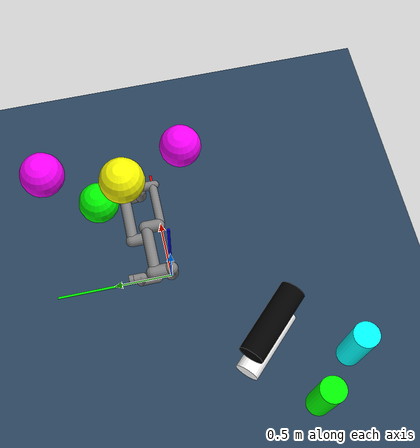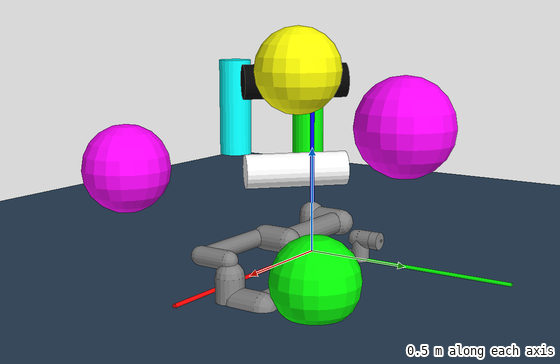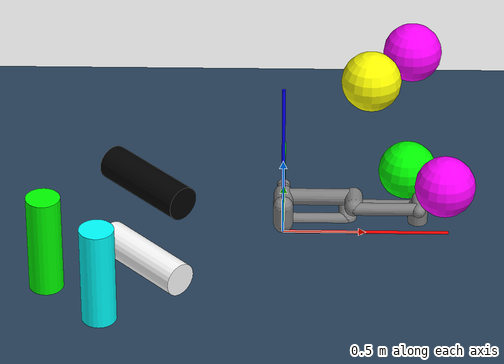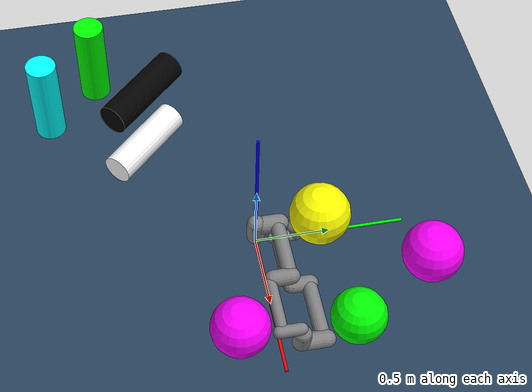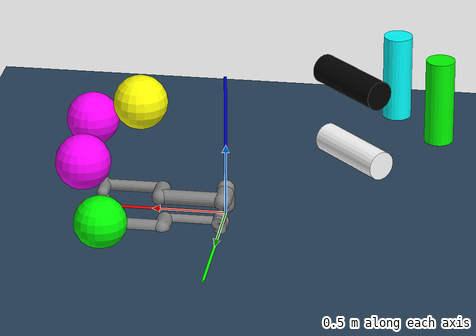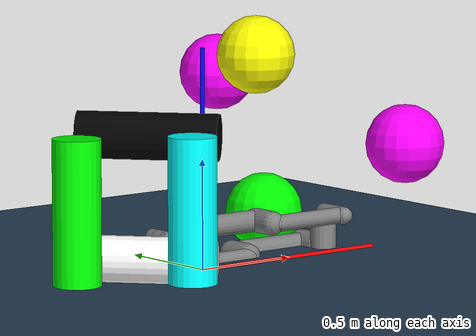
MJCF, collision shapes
<mujoco model="ur5e scene">

  <statistic center="0.3 0 0.4" extent="0.8"/>

  <visual>
    <headlight diffuse="0.6 0.6 0.6" ambient="0.1 0.1 0.1" specular="0 0 0"/>
    <rgba haze="0.15 0.25 0.35 1"/>
    <quality shadowsize="0"/>
  </visual>

  <asset>
    <texture type="skybox" builtin="gradient" rgb1="0.3 0.5 0.7" rgb2="0 0 0" width="512" height="3072"/>
    <texture type="2d" name="groundplane" builtin="checker" mark="edge" rgb1="0.2 0.3 0.4" rgb2="0.1 0.2 0.3"
      markrgb="0.8 0.8 0.8" width="300" height="300"/>
    <material name="groundplane" texture="groundplane" texuniform="true" texrepeat="5 5" reflectance="0"/>
  </asset>

  <worldbody>
    <!--	================= Coordinate system ================= /-->
		<light directional="false" cutoff="135" exponent="10" diffuse=".7 .7 .7" pos="0.4 -0.2 5.5" dir="-0.4 0.2 -5.5" specular=".3 .3 .3"/>
		<geom group="4" type="cylinder" contype="0" conaffinity="0" fromto="0 0 0 1 0 0" size="0.01" rgba="1 0 0 1"/>
		<geom group="4" type="cylinder" contype="0" conaffinity="0" fromto="0 0 0 0 1 0" size="0.01" rgba="0 1 0 1"/>
		<geom group="4" type="cylinder" contype="0" conaffinity="0" fromto="0 0 0 0 0 1" size="0.01" rgba="0 0 1 1"/>

    <light pos="0 0 1.5" dir="0 0 -1" directional="true"/>
    <geom name="floor" size="0 0 0.05" type="plane" material="groundplane"/>

  <body name="sphere1" pos="0.76340999 0.50321585 0.12606963" quat="1 0 0 0" >
      <geom group="1" name="sphere0" type="sphere" mass="0.4" size="0.18" rgba="0 1 0 0.5"/>
      <inertial pos="0 0 0" mass="0.2" diaginertia="0.001 0.001 0.001" />
  </body>
  <body name="sphere2" pos="0.5202747  0.26330838 0.9058423" quat="1 0 0 0" >
      <geom group="1" name="sphere1" type="sphere" mass="0.4" size="0.18" rgba="1 1 0 0.5"/>
      <inertial pos="0 0 0" mass="0.2" diaginertia="0.001 0.001 0.001" />
  </body>
  <body name="sphere3" pos="0.95268875 -0.28050018  0.51556448" quat="1 0 0 0" >
      <geom group="1" name="sphere2" type="sphere" mass="0.4" size="0.18" rgba="1 0 1 0.5"/>
      <inertial pos="0 0 0" mass="0.2" diaginertia="0.001 0.001 0.001" />
  </body>

  <body name="sphere4" pos="0.78704419 0.88009703 0.74686774" quat="1 0 0 0" >
      <geom group="1" name="sphere3" type="sphere" mass="0.4" size="0.18" rgba="1 0 1 0.5"/>
      <inertial pos="0 0 0" mass="0.2" diaginertia="0.001 0.001 0.001" />
  </body>
  <body name="cyl1" pos="-0.79662621 -0.62081242  0.22099285" quat="0.15848908 -0.36962848  0.60681832 -0.68558554" >
      <geom group="1" name="cylinder1" type="cylinder" mass="0.4" size="0.1 0.3" rgba="1 1 1 0.5"/>
      <inertial pos="0 0 0" mass="0.2" diaginertia="0.001 0.001 0.001" />
  </body>

  <body name="cyl2" pos="-0.77427365 -0.61406534  0.74329958" quat="0.15848908 -0.36962848  0.60681832 -0.68558554" >
      <geom group="1" name="cylinder2" type="cylinder" mass="0.4" size="0.1 0.3" rgba="0 0 0 0.5"/>
      <inertial pos="0 0 0" mass="0.2" diaginertia="0.001 0.001 0.001" />
  </body>
  <body name="cyl3" pos="-1.35370755 -0.89736099  0.51603806" quat="1 0 0 0" >
      <geom group="1" name="cylinder3" type="cylinder" mass="0.4" size="0.1 0.3" rgba="0 1 0 0.5"/>
      <inertial pos="0 0 0" mass="0.2" diaginertia="0.001 0.001 0.001" />
  </body>

  <body name="cyl4" pos="-1.02849892 -1.23807553  0.53468696" quat="1 0 0 0" >
      <geom group="1" name="cylinder4" type="cylinder" mass="0.4" size="0.1 0.3" rgba="0 1 1 0.5"/>
      <inertial pos="0 0 0" mass="0.2" diaginertia="0.001 0.001 0.001" />
  </body>

  </worldbody>

  <include file="ur5e.xml"/>
</mujoco>

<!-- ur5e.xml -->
<mujoco model="ur5e">
  <compiler angle="radian" meshdir="assets" autolimits="true"/>
  <option integrator="Euler" timestep="0.01" iterations="10" tolerance="1e-10" impratio="20"/>

  <default>
    <default class="ur5e">
      <material specular="0.5" shininess="0.25"/>
      <joint axis="0 1 0" range="-6.28319 6.28319" damping='200' armature="0.0004"/>
      <default class="GRIPPER">
        <joint damping='5'/>
      </default>

      <default class="visual">
        <geom type="mesh" contype="0" conaffinity="0" group="2"/>
      </default>
      <default class="collision">
        <geom type="capsule" group="3"/>
        <default class="eef_collision">
          <geom type="cylinder"/>
        </default>
      </default>
      <site size="0.001" rgba="0.5 0.5 0.5 0.3" group="4"/>
    </default>
  </default>

  <asset>
    <material class="ur5e" name="black" rgba="0.033 0.033 0.033 1"/>
    <material class="ur5e" name="jointgray" rgba="0.278 0.278 0.278 1"/>
    <material class="ur5e" name="linkgray" rgba="0.82 0.82 0.82 1"/>
    <material class="ur5e" name="urblue" rgba="0.49 0.678 0.8 1"/>

    <mesh file="base_0.obj"/>
    <mesh file="base_1.obj"/>
    <mesh file="shoulder_0.obj"/>
    <mesh file="shoulder_1.obj"/>
    <mesh file="shoulder_2.obj"/>
    <mesh file="upperarm_0.obj"/>
    <mesh file="upperarm_1.obj"/>
    <mesh file="upperarm_2.obj"/>
    <mesh file="upperarm_3.obj"/>
    <mesh file="forearm_0.obj"/>
    <mesh file="forearm_1.obj"/>
    <mesh file="forearm_2.obj"/>
    <mesh file="forearm_3.obj"/>
    <mesh file="wrist1_0.obj"/>
    <mesh file="wrist1_1.obj"/>
    <mesh file="wrist1_2.obj"/>
    <mesh file="wrist2_0.obj"/>
    <mesh file="wrist2_1.obj"/>
    <mesh file="wrist2_2.obj"/>
    <mesh file="wrist3.obj"/>
  </asset>

  <worldbody>
    <light name="spotlight" mode="targetbodycom" target="wrist_1_link" pos="0 -1 2"/>
    <!--body name="base" pos="0 0 0.74" quat=" 1 0 0 0" childclass="ur5e" quat=" 0 0 0 1"-->
    <body name="base" pos="0 0 0"  childclass="ur5e">
      <inertial mass="4.0" pos="0 0 0" diaginertia="0.00443333156 0.00443333156 0.0072"/>
      <geom group="2" name="ROBOT: base_0" mesh="base_0" material="black" class="visual"/>
      <geom group="2" name="ROBOT: base_1" mesh="base_1" material="jointgray" class="visual"/>
      <body name="shoulder_link" pos="0 0 0.163">
        <inertial mass="3.7" pos="0 0 0" diaginertia="0.0102675 0.0102675 0.00666"/><!--base joint-->
        <joint name="joint1" class="ur5e" axis="0 0 1" limited="true" range="-3.14159 3.14159"/>
        <geom group="2" name="ROBOT: shoulder_0" mesh="shoulder_0" material="urblue" class="visual"/>
        <geom group="2" name="ROBOT: shoulder_1" mesh="shoulder_1" material="black" class="visual"/>
        <geom group="2" name="ROBOT: shoulder_2" mesh="shoulder_2" material="jointgray" class="visual"/>
        <geom class="collision" size="0.06 0.06" pos="0 0 -0.04"/>
        <body name="upper_arm_link" pos="0 0.138 0" quat="1 0 1 0"> <!--90 deg about y-->
          <inertial mass="8.393" pos="0 0 0.2125" diaginertia="0.133886 0.133886 0.0151074"/>
          <joint name="joint2" class="ur5e" limited="true" range="-3.14159 3.14159"/>
          <geom group="2" name="ROBOT: upperarm_0" mesh="upperarm_0" material="linkgray" class="visual"/>
          <geom group="2" name="ROBOT: upperarm_1" mesh="upperarm_1" material="black" class="visual"/>
          <geom group="2" name="ROBOT: upperarm_2" mesh="upperarm_2" material="jointgray" class="visual"/>
          <geom group="2" name="ROBOT: upperarm_3" mesh="upperarm_3" material="urblue" class="visual"/>
          <geom class="collision" pos="0 -0.04 0" quat="1 1 0 0" size="0.06 0.06"/>
          <geom class="collision" size="0.05 0.2" pos="0 0 0.2"/>
          <body name="forearm_link" pos="0 -0.131 0.425">
            <inertial mass="2.275" pos="0 0 0.196" diaginertia="0.0311796 0.0311796 0.004095"/>
            <joint name="joint3" class="ur5e" limited="true" range="-3.14159 3.14159" />
            <geom group="2" name="ROBOT: forearm_0" mesh="forearm_0" material="urblue" class="visual"/>
            <geom group="2" name="ROBOT: forearm_1" mesh="forearm_1" material="linkgray" class="visual"/>
            <geom group="2" name="ROBOT: forearm_2" mesh="forearm_2" material="black" class="visual"/>
            <geom group="2" name="ROBOT: forearm_3" mesh="forearm_3" material="jointgray" class="visual"/>
            <geom class="collision" pos="0 0.08 0" quat="1 1 0 0" size="0.055 0.06"/>
            <geom class="collision" size="0.038 0.19" pos="0 0 0.2"/>
            <body name="wrist_1_link" pos="0 0 0.392" quat="1 0 1 0"> <!--90 deg about y-->
              <inertial mass="1.219" pos="0 0.127 0" diaginertia="0.0025599 0.0025599 0.0021942"/>
              <joint name="joint4" class="ur5e" limited="true" range="-3.14159 3.14159" />
              <geom group="2" name="ROBOT: wrist1_0" mesh="wrist1_0" material="black" class="visual"/>
              <geom group="2" name="ROBOT: wrist1_1" mesh="wrist1_1" material="urblue" class="visual"/>
              <geom group="2" name="ROBOT: wrist1_2" mesh="wrist1_2" material="jointgray" class="visual"/>
              <geom class="collision" pos="0 0.05 0" quat="1 1 0 0" size="0.04 0.07"/>
              <!--extra frame to align wrist_1_link body frame with link 4 dh parameter frame-->
              <body name="ee_link1" pos="0 0.127 0" > <!--from center of link 2 to center of link3. 0.133(dh)-0.0265 (1/2 link thickness)-->
                  <inertial pos="0 -0.0018 0.01634" mass="1.37" diaginertia="1.66667e-08 1.66667e-08 1.66667e-08" />
                  <geom group="2" name="ROBOT: ee_1" size="0.005 0.005 0.005" pos="-0.01 0 0" type="box" />
                    <!--upper UR5e-->
                    <body name="base2" pos="0 0 0" >
                    <inertial mass="4.0" pos="0 0 0" diaginertia="0.00443333156 0.00443333156 0.0072"/>
                    <geom group="2" name="ROBOT: base_20" mesh="base_0" material="black" class="visual"/>
                    <geom group="2" name="ROBOT: base_21" mesh="base_1" material="jointgray" class="visual"/>
                    <body name="shoulder_link2" pos="0 0 0.163">
                      <inertial mass="3.7" pos="0 0 0" diaginertia="0.0102675 0.0102675 0.00666"/>
                      <joint name="joint5" class="ur5e" axis="0 0 1" limited="true" range="-3.14159 3.14159"/>
                      <geom group="2" name="ROBOT: shoulder_20" mesh="shoulder_0" material="urblue" class="visual"/>
                      <geom group="2" name="ROBOT: shoulder_21" mesh="shoulder_1" material="black" class="visual"/>
                      <geom group="2" name="ROBOT: shoulder_22" mesh="shoulder_2" material="jointgray" class="visual"/>
                      <geom class="collision" size="0.06 0.06" pos="0 0 -0.04"/>
                      <body name="upper_arm_link2" pos="0 0.138 0" quat="1 0 1 0"> <!-- 90 about y-->
                        <inertial mass="8.393" pos="0 0 0.2125" diaginertia="0.133886 0.133886 0.0151074"/>
                        <joint name="joint6" class="ur5e" limited="true" range="-3.14159 3.14159"/>
                        <geom group="2" name="ROBOT: upperarm_20" mesh="upperarm_0" material="linkgray" class="visual"/>
                        <geom group="2" name="ROBOT: upperarm_21" mesh="upperarm_1" material="black" class="visual"/>
                        <geom group="2" name="ROBOT: upperarm_22" mesh="upperarm_2" material="jointgray" class="visual"/>
                        <geom group="2" name="ROBOT: upperarm_23" mesh="upperarm_3" material="urblue" class="visual"/>
                        <geom class="collision" pos="0 -0.04 0" quat="1 1 0 0" size="0.06 0.06"/>
                        <geom class="collision" size="0.05 0.2" pos="0 0 0.2"/>
                        <body name="forearm_link2" pos="0 -0.131 0.425">
                          <inertial mass="2.275" pos="0 0 0.196" diaginertia="0.0311796 0.0311796 0.004095"/>
                          <joint name="joint7" class="ur5e" limited="true" range="-3.14159 3.14159" />
                          <geom group="2" name="ROBOT: forearm_20" mesh="forearm_0" material="urblue" class="visual"/>
                          <geom group="2" name="ROBOT: forearm_21" mesh="forearm_1" material="linkgray" class="visual"/>
                          <geom group="2" name="ROBOT: forearm_22" mesh="forearm_2" material="black" class="visual"/>
                          <geom group="2" name="ROBOT: forearm_23" mesh="forearm_3" material="jointgray" class="visual"/>
                          <geom class="collision" pos="0 0.08 0" quat="1 1 0 0" size="0.055 0.06"/>
                          <geom class="collision" size="0.038 0.19" pos="0 0 0.2"/>
                          <body name="wrist_1_link2" pos="0 0 0.392" quat="1 0 1 0">
                            <inertial mass="1.219" pos="0 0.127 0" diaginertia="0.0025599 0.0025599 0.0021942"/>
                            <joint name="joint8" class="ur5e" limited="true" range="-3.14159 3.14159" />
                            <geom group="2" name="ROBOT: wrist1_20" mesh="wrist1_0" material="black" class="visual"/>
                            <geom group="2" name="ROBOT: wrist1_21" mesh="wrist1_1" material="urblue" class="visual"/>
                            <geom group="2" name="ROBOT: wrist1_22" mesh="wrist1_2" material="jointgray" class="visual"/>
                            <geom class="collision" pos="0 0.05 0" quat="1 1 0 0" size="0.04 0.07"/>
                            <body name="wrist_2_link2" pos="0 0.127 0">
                              <inertial mass="1.219" pos="0 0 0.1" diaginertia="0.0025599 0.0025599 0.0021942"/>
                              <joint name="joint9" axis="0 0 1" class="ur5e" limited="true" range="-3.14159 3.14159" />
                              <geom group="2" name="ROBOT: wrist2_20" mesh="wrist2_0" material="black" class="visual"/>
                              <geom group="2" name="ROBOT: wrist2_21" mesh="wrist2_1" material="urblue" class="visual"/>
                              <geom group="2" name="ROBOT: wrist2_22" mesh="wrist2_2" material="jointgray" class="visual"/>
                              <geom class="collision" size="0.04 0.06" pos="0 0 0.04"/>
                              <geom class="collision" pos="0 0.02 0.1" quat="1 1 0 0" size="0.04 0.04"/>
                              <body name="wrist_3_link2" pos="0 0 0.1">
                                <inertial mass="0.1889" pos="0 0.0771683 0" quat="1 0 0 1" diaginertia="0.00132134 9.90863e-04 9.90863e-04"/>
                                <joint name="joint10" class="ur5e" limited="true" range="-3.14159 3.14159" />
                                <geom material="linkgray" mesh="wrist3" class="visual"/>
                                <geom class="eef_collision" pos="0 0.08 0" quat="1 1 0 0" size="0.04 0.02"/>
                                <!--joint 6 frame from DH -->
                                <body name="ee_link2" pos="0 0.0996 0" quat="0.707107 -0.707107 0 0" >
                                  <inertial pos="0 0 -0.001159" mass="0.365"  diaginertia="0.1 0.1 0.2" />
                                  <geom group="2" name="ROBOT: ee_2" size="0.005 0.005 0.005" pos="-0.01 0 0" type="box" />
                                  <!--"toolframe" can be added here-->

                              </body>
                            </body>
                          </body>
                        </body>
                      </body>
                    </body>
                  </body>
                </body>

              </body>
            </body>
          </body>
        </body>
      </body>
    </body>
  </worldbody>

  <actuator>      <!--        ctrl input clamp........................        -->
    <motor name='actuator1'  joint="joint1" />
    <motor name='actuator2' joint="joint2" />
    <motor name='actuator3' joint="joint3" />
    <motor name='actuator4' joint="joint4" />
    <motor name='actuator5' joint="joint5" />
    <motor name='actuator6' joint="joint6" />
    <motor name='actuator7' joint="joint7" />
    <motor name='actuator8' joint="joint8" />
    <motor name='actuator9' joint="joint9" />
    <motor name='actuator10' joint="joint10" />

  </actuator>

</mujoco>
